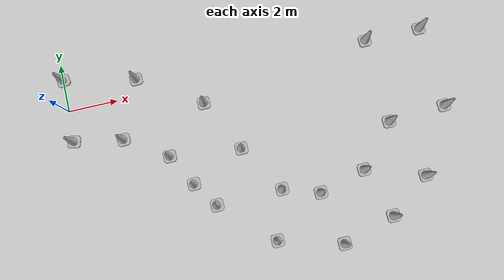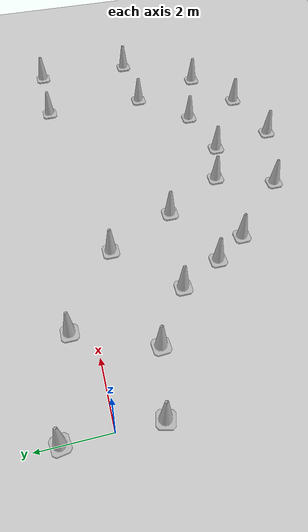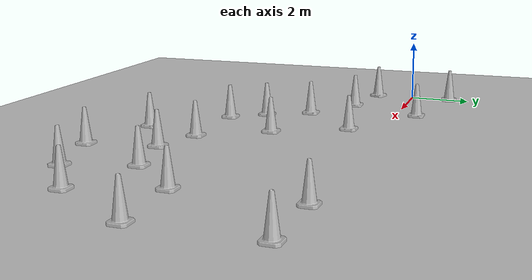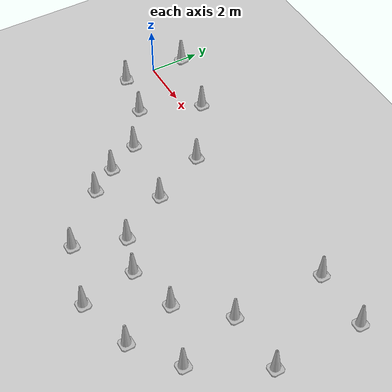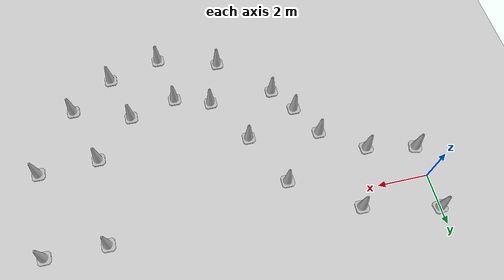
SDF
<sdf version="1.6">
 <world name="default">
  <light name="sun" type="directional">
   <pose>0 0 10 0 -0 0</pose>
   <diffuse>0.8 0.8 0.8 1</diffuse>
   <specular>0.2 0.2 0.2 1</specular>
   <attenuation>
    <range>1000</range>
    <constant>0.9</constant>
    <linear>0.01</linear>
    <quadratic>0.001</quadratic>
   </attenuation>
   <direction>-0.5 0.1 -0.9</direction>
  </light>
  <model name="ground_plane">
   <pose>0 0 0 0 -0 1.57</pose>
   <static>1</static>
   <link name="link">
    <collision name="collision">
     <geometry><plane><normal>0 0 1</normal><size>100 100</size></plane></geometry>
     <surface>
      <contact><collide_bitmask>65535</collide_bitmask></contact>
      <friction><ode><mu>100</mu><mu2>50</mu2></ode></friction>
     </surface>
    </collision>
    <visual name="visual">
     <cast_shadows>0</cast_shadows>
     <geometry><plane><normal>0 0 1</normal><size>100 100</size></plane></geometry>
     <material>
      <script><uri>file://media/materials/scripts/gazebo.material</uri><name>Gazebo/Grey</name></script>
     </material>
    </visual>
   </link>
  </model>
  <gravity>0 0 -9.8</gravity>
  <magnetic_field>6e-06 2.3e-05 -4.2e-05</magnetic_field>
  <atmosphere type="adiabatic"/>
  <physics name="default_physics" default="0" type="ode">
   <max_step_size>0.001</max_step_size>
   <real_time_factor>1</real_time_factor>
   <real_time_update_rate>1000</real_time_update_rate>
  </physics>
  <scene><ambient>0.4 0.4 0.4 1</ambient><background>0.7 0.7 0.7 1</background><shadows>1</shadows></scene>
  <spherical_coordinates>
   <surface_model>EARTH_WGS84</surface_model>
   <latitude_deg>0</latitude_deg>
   <longitude_deg>0</longitude_deg>
   <elevation>0</elevation>
   <heading_deg>0</heading_deg>
  </spherical_coordinates>
  <model name="Construction Cone">
   <link name="link">
    <collision name="collision">
     <geometry>
      <mesh><scale>10 10 10</scale><uri>model://construction_cone/meshes/construction_cone.dae</uri></mesh>
     </geometry>
    </collision>
    <visual name="visual">
     <geometry>
      <mesh><scale>10 10 10</scale><uri>model://construction_cone/meshes/construction_cone.dae</uri></mesh>
     </geometry>
    </visual>
    <inertial>
     <inertia><ixx>1</ixx><ixy>0</ixy><ixz>0</ixz><iyy>1</iyy><iyz>0</iyz><izz>1</izz></inertia>
     <mass>1</mass>
    </inertial>
   </link>
   <pose>0 -1.27 -0 0 -0 2.88698</pose>
  </model>
  <model name="Construction Cone_clone">
   <link name="link">
    <collision name="collision">
     <geometry>
      <mesh><scale>10 10 10</scale><uri>model://construction_cone/meshes/construction_cone.dae</uri></mesh>
     </geometry>
    </collision>
    <visual name="visual">
     <geometry>
      <mesh><scale>10 10 10</scale><uri>model://construction_cone/meshes/construction_cone.dae</uri></mesh>
     </geometry>
    </visual>
    <inertial>
     <inertia><ixx>1</ixx><ixy>0</ixy><ixz>0</ixz><iyy>1</iyy><iyz>0</iyz><izz>1</izz></inertia>
     <mass>1</mass>
    </inertial>
   </link>
   <pose>1.94 -1.66 -0 0 -0 0.056886</pose>
  </model>
  <model name="Construction Cone_clone_0">
   <link name="link">
    <collision name="collision">
     <geometry>
      <mesh><scale>10 10 10</scale><uri>model://construction_cone/meshes/construction_cone.dae</uri></mesh>
     </geometry>
    </collision>
    <visual name="visual">
     <geometry>
      <mesh><scale>10 10 10</scale><uri>model://construction_cone/meshes/construction_cone.dae</uri></mesh>
     </geometry>
    </visual>
    <inertial>
     <inertia><ixx>1</ixx><ixy>0</ixy><ixz>0</ixz><iyy>1</iyy><iyz>0</iyz><izz>1</izz></inertia>
     <mass>1</mass>
    </inertial>
   </link>
   <pose>2.92 0.683 -1e-05 -1e-06 0 0</pose>
  </model>
  <model name="Construction Cone_clone_1">
   <link name="link">
    <collision name="collision">
     <geometry>
      <mesh><scale>10 10 10</scale><uri>model://construction_cone/meshes/construction_cone.dae</uri></mesh>
     </geometry>
    </collision>
    <visual name="visual">
     <geometry>
      <mesh><scale>10 10 10</scale><uri>model://construction_cone/meshes/construction_cone.dae</uri></mesh>
     </geometry>
    </visual>
    <inertial>
     <inertia><ixx>1</ixx><ixy>0</ixy><ixz>0</ixz><iyy>1</iyy><iyz>0</iyz><izz>1</izz></inertia>
     <mass>1</mass>
    </inertial>
   </link>
   <pose>5.4 -0.96 -0 0 -0 0</pose>
  </model>
  <model name="Construction Cone_clone_2">
   <link name="link">
    <collision name="collision">
     <geometry>
      <mesh><scale>10 10 10</scale><uri>model://construction_cone/meshes/construction_cone.dae</uri></mesh>
     </geometry>
    </collision>
    <visual name="visual">
     <geometry>
      <mesh><scale>10 10 10</scale><uri>model://construction_cone/meshes/construction_cone.dae</uri></mesh>
     </geometry>
    </visual>
    <inertial>
     <inertia><ixx>1</ixx><ixy>0</ixy><ixz>0</ixz><iyy>1</iyy><iyz>0</iyz><izz>1</izz></inertia>
     <mass>1</mass>
    </inertial>
   </link>
   <pose>6.45 -3.13128 -0 0 -0 0</pose>
  </model>
  <model name="Construction Cone_clone_3">
   <link name="link">
    <collision name="collision">
     <geometry>
      <mesh><scale>10 10 10</scale><uri>model://construction_cone/meshes/construction_cone.dae</uri></mesh>
     </geometry>
    </collision>
    <visual name="visual">
     <geometry>
      <mesh><scale>10 10 10</scale><uri>model://construction_cone/meshes/construction_cone.dae</uri></mesh>
     </geometry>
    </visual>
    <inertial>
     <inertia><ixx>1</ixx><ixy>0</ixy><ixz>0</ixz><iyy>1</iyy><iyz>0</iyz><izz>1</izz></inertia>
     <mass>1</mass>
    </inertial>
   </link>
   <pose>3.6 -2.76 -0 0 -0 0</pose>
  </model>
  <model name="Construction Cone_clone_4">
   <link name="link">
    <collision name="collision">
     <geometry>
      <mesh><scale>10 10 10</scale><uri>model://construction_cone/meshes/construction_cone.dae</uri></mesh>
     </geometry>
    </collision>
    <visual name="visual">
     <geometry>
      <mesh><scale>10 10 10</scale><uri>model://construction_cone/meshes/construction_cone.dae</uri></mesh>
     </geometry>
    </visual>
    <inertial>
     <inertia><ixx>1</ixx><ixy>0</ixy><ixz>0</ixz><iyy>1</iyy><iyz>0</iyz><izz>1</izz></inertia>
     <mass>1</mass>
    </inertial>
   </link>
   <pose>5 -5.09 -0 0 -0 0</pose>
  </model>
  <model name="Construction Cone_clone_5">
   <link name="link">
    <collision name="collision">
     <geometry>
      <mesh><scale>10 10 10</scale><uri>model://construction_cone/meshes/construction_cone.dae</uri></mesh>
     </geometry>
    </collision>
    <visual name="visual">
     <geometry>
      <mesh><scale>10 10 10</scale><uri>model://construction_cone/meshes/construction_cone.dae</uri></mesh>
     </geometry>
    </visual>
    <inertial>
     <inertia><ixx>1</ixx><ixy>0</ixy><ixz>0</ixz><iyy>1</iyy><iyz>0</iyz><izz>1</izz></inertia>
     <mass>1</mass>
    </inertial>
   </link>
   <pose>7.63 -5.09 0 -0 -0 -0</pose>
  </model>
  <model name="Construction Cone_clone_6">
   <link name="link">
    <collision name="collision">
     <geometry>
      <mesh><scale>10 10 10</scale><uri>model://construction_cone/meshes/construction_cone.dae</uri></mesh>
     </geometry>
    </collision>
    <visual name="visual">
     <geometry>
      <mesh><scale>10 10 10</scale><uri>model://construction_cone/meshes/construction_cone.dae</uri></mesh>
     </geometry>
    </visual>
    <inertial>
     <inertia><ixx>1</ixx><ixy>0</ixy><ixz>0</ixz><iyy>1</iyy><iyz>0</iyz><izz>1</izz></inertia>
     <mass>1</mass>
    </inertial>
   </link>
   <pose>4.3 -4.06705 -0 0 -0 0</pose>
  </model>
  <model name="Construction Cone_clone_7">
   <link name="link">
    <collision name="collision">
     <geometry>
      <mesh><scale>10 10 10</scale><uri>model://construction_cone/meshes/construction_cone.dae</uri></mesh>
     </geometry>
    </collision>
    <visual name="visual">
     <geometry>
      <mesh><scale>10 10 10</scale><uri>model://construction_cone/meshes/construction_cone.dae</uri></mesh>
     </geometry>
    </visual>
    <inertial>
     <inertia><ixx>1</ixx><ixy>0</ixy><ixz>0</ixz><iyy>1</iyy><iyz>0</iyz><izz>1</izz></inertia>
     <mass>1</mass>
    </inertial>
   </link>
   <pose>0.017281 1.33728 0 0 -0 0.150311</pose>
  </model>
  <model name="Construction Cone_clone_4_clone_0_clone_1">
   <link name="link">
    <collision name="collision">
     <geometry>
      <mesh><scale>10 10 10</scale><uri>model://construction_cone/meshes/construction_cone.dae</uri></mesh>
     </geometry>
    </collision>
    <visual name="visual">
     <geometry>
      <mesh><scale>10 10 10</scale><uri>model://construction_cone/meshes/construction_cone.dae</uri></mesh>
     </geometry>
    </visual>
    <inertial>
     <inertia><ixx>1</ixx><ixy>0</ixy><ixz>0</ixz><iyy>1</iyy><iyz>0</iyz><izz>1</izz></inertia>
     <mass>1</mass>
    </inertial>
   </link>
   <pose>9.08056 -5.58619 -8e-06 7e-06 -0 0</pose>
  </model>
  <model name="Construction Cone_clone_4_clone_0_clone_3">
   <link name="link">
    <collision name="collision">
     <geometry>
      <mesh><scale>10 10 10</scale><uri>model://construction_cone/meshes/construction_cone.dae</uri></mesh>
     </geometry>
    </collision>
    <visual name="visual">
     <geometry>
      <mesh><scale>10 10 10</scale><uri>model://construction_cone/meshes/construction_cone.dae</uri></mesh>
     </geometry>
    </visual>
    <inertial>
     <inertia><ixx>1</ixx><ixy>0</ixy><ixz>0</ixz><iyy>1</iyy><iyz>0</iyz><izz>1</izz></inertia>
     <mass>1</mass>
    </inertial>
   </link>
   <pose>10.9771 -5.1231 -0 0 -1e-06 0</pose>
  </model>
  <model name="Construction Cone_clone_4_clone_0_clone_4">
   <link name="link">
    <collision name="collision">
     <geometry>
      <mesh><scale>10 10 10</scale><uri>model://construction_cone/meshes/construction_cone.dae</uri></mesh>
     </geometry>
    </collision>
    <visual name="visual">
     <geometry>
      <mesh><scale>10 10 10</scale><uri>model://construction_cone/meshes/construction_cone.dae</uri></mesh>
     </geometry>
    </visual>
    <inertial>
     <inertia><ixx>1</ixx><ixy>0</ixy><ixz>0</ixz><iyy>1</iyy><iyz>0</iyz><izz>1</izz></inertia>
     <mass>1</mass>
    </inertial>
   </link>
   <pose>11.5943 -7.12982 -3e-06 -3e-06 -1e-06 -0</pose>
  </model>
  <model name="Construction Cone_clone_4_clone_0_clone_5">
   <link name="link">
    <collision name="collision">
     <geometry>
      <mesh><scale>10 10 10</scale><uri>model://construction_cone/meshes/construction_cone.dae</uri></mesh>
     </geometry>
    </collision>
    <visual name="visual">
     <geometry>
      <mesh><scale>10 10 10</scale><uri>model://construction_cone/meshes/construction_cone.dae</uri></mesh>
     </geometry>
    </visual>
    <inertial>
     <inertia><ixx>1</ixx><ixy>0</ixy><ixz>0</ixz><iyy>1</iyy><iyz>0</iyz><izz>1</izz></inertia>
     <mass>1</mass>
    </inertial>
   </link>
   <pose>12.4984 -3.4916 -0 0 -1e-06 0</pose>
  </model>
  <model name="Construction Cone_clone_4_clone_0_clone_6">
   <link name="link">
    <collision name="collision">
     <geometry>
      <mesh><scale>10 10 10</scale><uri>model://construction_cone/meshes/construction_cone.dae</uri></mesh>
     </geometry>
    </collision>
    <visual name="visual">
     <geometry>
      <mesh><scale>10 10 10</scale><uri>model://construction_cone/meshes/construction_cone.dae</uri></mesh>
     </geometry>
    </visual>
    <inertial>
     <inertia><ixx>1</ixx><ixy>0</ixy><ixz>0</ixz><iyy>1</iyy><iyz>0</iyz><izz>1</izz></inertia>
     <mass>1</mass>
    </inertial>
   </link>
   <pose>13.2921 -5.91718 -0 0 -0 0</pose>
  </model>
  <model name="Construction Cone_clone_5_clone">
   <link name="link">
    <collision name="collision">
     <geometry>
      <mesh><scale>10 10 10</scale><uri>model://construction_cone/meshes/construction_cone.dae</uri></mesh>
     </geometry>
    </collision>
    <visual name="visual">
     <geometry>
      <mesh><scale>10 10 10</scale><uri>model://construction_cone/meshes/construction_cone.dae</uri></mesh>
     </geometry>
    </visual>
    <inertial>
     <inertia><ixx>1</ixx><ixy>0</ixy><ixz>0</ixz><iyy>1</iyy><iyz>0</iyz><izz>1</izz></inertia>
     <mass>1</mass>
    </inertial>
   </link>
   <pose>6.96834 -6.97407 -0 0 -0 0</pose>
  </model>
  <model name="Construction Cone_clone_5_clone_0">
   <link name="link">
    <collision name="collision">
     <geometry>
      <mesh><scale>10 10 10</scale><uri>model://construction_cone/meshes/construction_cone.dae</uri></mesh>
     </geometry>
    </collision>
    <visual name="visual">
     <geometry>
      <mesh><scale>10 10 10</scale><uri>model://construction_cone/meshes/construction_cone.dae</uri></mesh>
     </geometry>
    </visual>
    <inertial>
     <inertia><ixx>1</ixx><ixy>0</ixy><ixz>0</ixz><iyy>1</iyy><iyz>0</iyz><izz>1</izz></inertia>
     <mass>1</mass>
    </inertial>
   </link>
   <pose>9.46006 -7.70168 -0 0 -1e-06 0</pose>
  </model>
  <model name="Construction Cone_clone_5_clone_1">
   <link name="link">
    <collision name="collision">
     <geometry>
      <mesh><scale>10 10 10</scale><uri>model://construction_cone/meshes/construction_cone.dae</uri></mesh>
     </geometry>
    </collision>
    <visual name="visual">
     <geometry>
      <mesh><scale>10 10 10</scale><uri>model://construction_cone/meshes/construction_cone.dae</uri></mesh>
     </geometry>
    </visual>
    <inertial>
     <inertia><ixx>1</ixx><ixy>0</ixy><ixz>0</ixz><iyy>1</iyy><iyz>0</iyz><izz>1</izz></inertia>
     <mass>1</mass>
    </inertial>
   </link>
   <pose>14.8628 -3.37965 0 -0 -0 -0</pose>
  </model>
  <model name="Construction Cone_clone_5_clone_2">
   <link name="link">
    <collision name="collision">
     <geometry>
      <mesh><scale>10 10 10</scale><uri>model://construction_cone/meshes/construction_cone.dae</uri></mesh>
     </geometry>
    </collision>
    <visual name="visual">
     <geometry>
      <mesh><scale>10 10 10</scale><uri>model://construction_cone/meshes/construction_cone.dae</uri></mesh>
     </geometry>
    </visual>
    <inertial>
     <inertia><ixx>1</ixx><ixy>0</ixy><ixz>0</ixz><iyy>1</iyy><iyz>0</iyz><izz>1</izz></inertia>
     <mass>1</mass>
    </inertial>
   </link>
   <pose>12.5032 0.037836 -1e-06 2e-06 2e-06 0</pose>
  </model>
  <model name="Construction Cone_clone_5_clone_3">
   <link name="link">
    <collision name="collision">
     <geometry>
      <mesh><scale>10 10 10</scale><uri>model://construction_cone/meshes/construction_cone.dae</uri></mesh>
     </geometry>
    </collision>
    <visual name="visual">
     <geometry>
      <mesh><scale>10 10 10</scale><uri>model://construction_cone/meshes/construction_cone.dae</uri></mesh>
     </geometry>
    </visual>
    <inertial>
     <inertia><ixx>1</ixx><ixy>0</ixy><ixz>0</ixz><iyy>1</iyy><iyz>0</iyz><izz>1</izz></inertia>
     <mass>1</mass>
    </inertial>
   </link>
   <pose>14.8406 0.015868 -8e-06 0 1e-06 0</pose>
  </model>
 </world>
</sdf>
